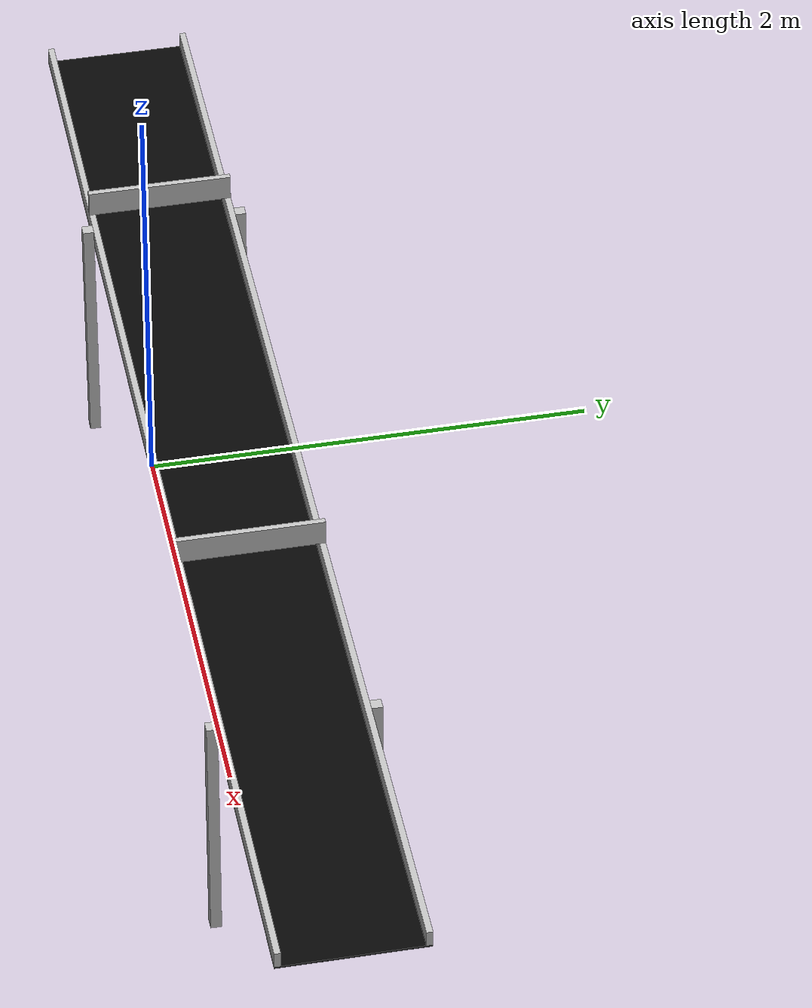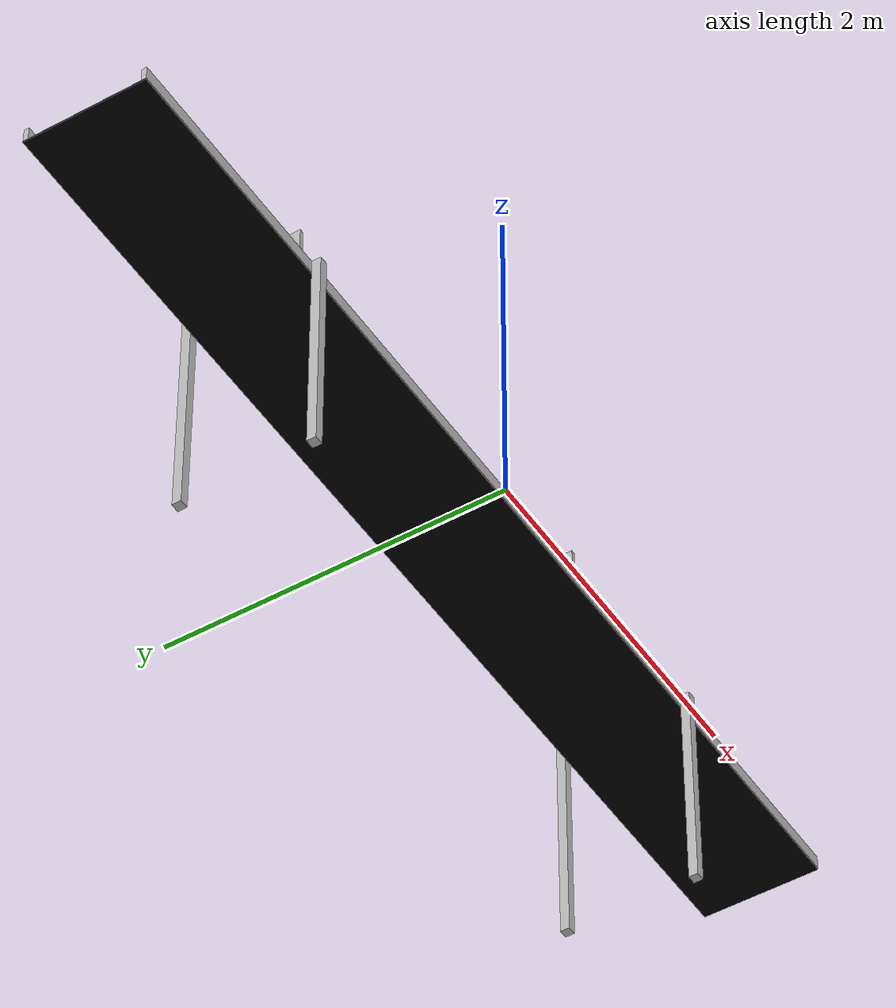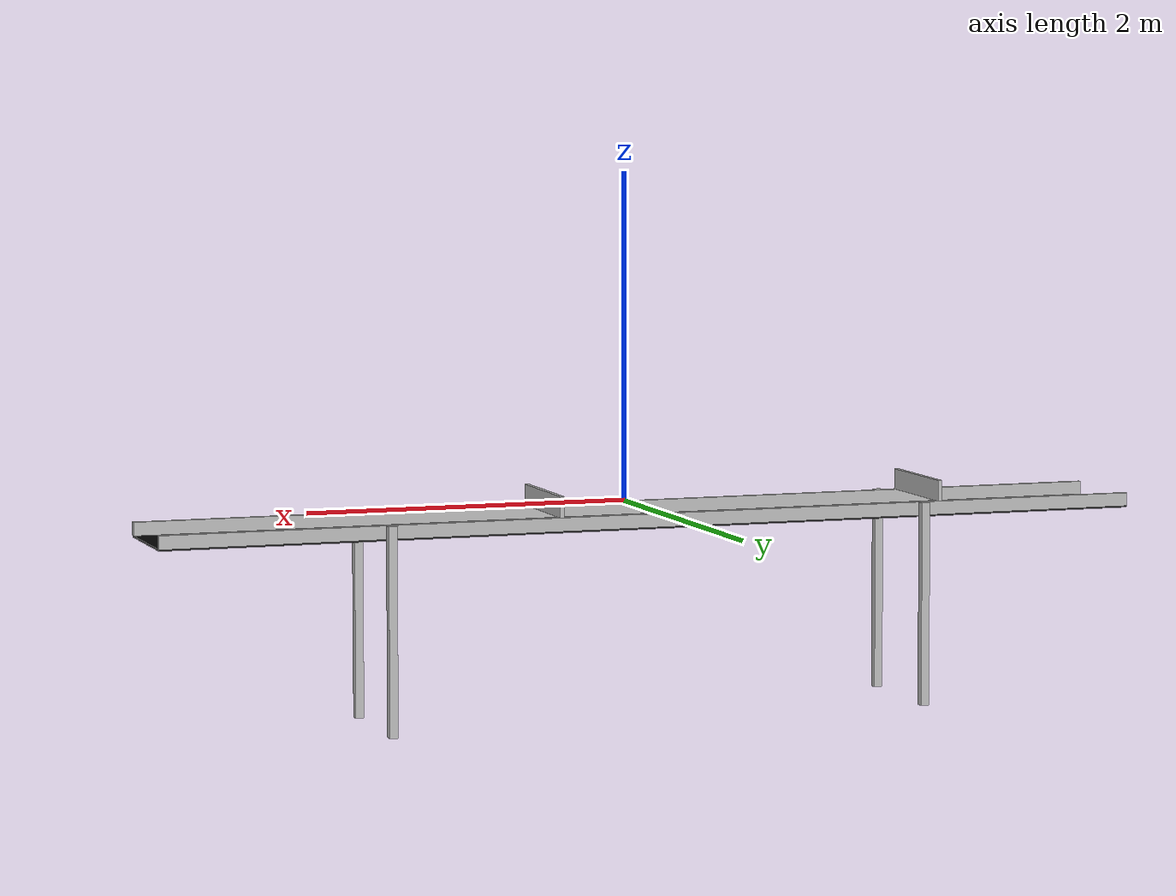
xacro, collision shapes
<?xml version="1.0"?>
<!-- created with Phobos 1.0.1 "Capricious Choutengan" -->
  <robot name="conveyor_g">

    <link name="link_belt">
      <inertial>
        <origin xyz="0 0 0" rpy="0 0 0"/>
        <mass value="10.0"/>
        <inertia ixx="0.38299" ixy="0" ixz="0" iyy="31.09613" iyz="0" izz="31.47895"/>
      </inertial>
      <visual name="visual_belt">
        <origin xyz="0 0 0" rpy="0 0 0"/>
        <geometry>
          <mesh filename="package://ur3e_irl_project/meshes/belt.dae" scale="1.0 1.0 1.0"/>
        </geometry>
        <material name="5,5,5"/>
      </visual>
      <collision name="collision_belt">
        <origin xyz="0 0 0" rpy="0 0 0"/>
        <geometry>
          <box size="6.10862 0.67785 0.01"/>
        </geometry>
      </collision>
    </link>

    <link name="link_bridge_left">
      <inertial>
        <origin xyz="0 0 0" rpy="0 0 0"/>
        <mass value="10.0"/>
        <inertia ixx="0.49874" ixy="0" ixz="0" iyy="0.01319" iyz="0" izz="0.48632"/>
      </inertial>
      <visual name="visual_bridge_left">
        <origin xyz="0 0 0" rpy="0 0 0"/>
        <geometry>
          <mesh filename="package://ur3e_irl_project/meshes/bridge_left.dae" scale="1.0 1.0 1.0"/>
        </geometry>
        <material name="191,191,191"/>
      </visual>
      <collision name="collision_bridge_left">
        <origin xyz="0 0 0.00635" rpy="0 0 0"/>
        <geometry>
          <box size="0.0254 0.67785 0.127"/>
        </geometry>
      </collision>
    </link>

    <link name="link_bridge_right">
      <inertial>
        <origin xyz="0 0 0" rpy="0 0 0"/>
        <mass value="10.0"/>
        <inertia ixx="0.49874" ixy="0" ixz="0" iyy="0.01319" iyz="0" izz="0.48632"/>
      </inertial>
      <visual name="visual_bridge_right">
        <origin xyz="0 0 0" rpy="0 0 0"/>
        <geometry>
          <mesh filename="package://ur3e_irl_project/meshes/brigde_right.dae" scale="1.0 1.0 1.0"/>
        </geometry>
        <material name="191,191,191"/>
      </visual>
      <collision name="collision_bridge_right">
        <origin xyz="0 0 0.00635" rpy="0 0 0"/>
        <geometry>
          <box size="0.0254 0.67785 0.127"/>
        </geometry>
      </collision>
    </link>

    <link name="link_flap_back">
      <inertial>
        <origin xyz="0 0 0" rpy="0 0 0"/>
        <mass value="10.0"/>
        <inertia ixx="0.00593" ixy="0" ixz="0" iyy="31.1013" iyz="0" izz="31.09673"/>
      </inertial>
      <visual name="visual_flap_back">
        <origin xyz="0 0 0" rpy="0 0 0"/>
        <geometry>
          <mesh filename="package://ur3e_irl_project/meshes/flap_back.dae" scale="1.0 1.0 1.0"/>
        </geometry>
        <material name="191,191,191"/>
      </visual>
      <collision name="collision_flap_back">
        <origin xyz="0 0 0" rpy="0 0 0"/>
        <geometry>
          <box size="6.10862 0.02857 0.07937"/>
        </geometry>
      </collision>
    </link>

    <link name="link_flap_front">
      <inertial>
        <origin xyz="0 0 0" rpy="0 0 0"/>
        <mass value="10.0"/>
        <inertia ixx="0.00593" ixy="0" ixz="0" iyy="31.1013" iyz="0" izz="31.09673"/>
      </inertial>
      <visual name="visual_flap_front">
        <origin xyz="0 0 0" rpy="0 0 0"/>
        <geometry>
          <mesh filename="package://ur3e_irl_project/meshes/flap_front.dae" scale="1.0 1.0 1.0"/>
        </geometry>
        <material name="191,191,191"/>
      </visual>
      <collision name="collision_flap_front">
        <origin xyz="0 0 0" rpy="0 0 0"/>
        <geometry>
          <box size="6.10862 0.02857 0.07937"/>
        </geometry>
      </collision>
    </link>

    <link name="link_leg_back_left">
      <inertial>
        <origin xyz="0 0 0" rpy="0 0 0"/>
        <mass value="10.0"/>
        <inertia ixx="1.29297" ixy="0" ixz="0" iyy="1.29297" iyz="0" izz="0.0043"/>
      </inertial>
      <visual name="visual_leg_back_left">
        <origin xyz="0 0 0" rpy="0 0 0"/>
        <geometry>
          <mesh filename="package://ur3e_irl_project/meshes/leg_back_left.dae" scale="1.0 1.0 1.0"/>
        </geometry>
        <material name="191,191,191"/>
      </visual>
      <collision name="collision_leg_back_left">
        <origin xyz="0 0 0" rpy="0 0 0"/>
        <geometry>
          <box size="0.0508 0.0508 1.24458"/>
        </geometry>
      </collision>
    </link>

    <link name="link_leg_back_right">
      <inertial>
        <origin xyz="0 0 0" rpy="0 0 0"/>
        <mass value="10.0"/>
        <inertia ixx="1.29297" ixy="0" ixz="0" iyy="1.29297" iyz="0" izz="0.0043"/>
      </inertial>
      <visual name="visual_leg_back_right">
        <origin xyz="0 0 0" rpy="0 0 0"/>
        <geometry>
          <mesh filename="package://ur3e_irl_project/meshes/leg_back_right.dae" scale="1.0 1.0 1.0"/>
        </geometry>
        <material name="191,191,191"/>
      </visual>
      <collision name="collision_leg_back_right">
        <origin xyz="0 0 0" rpy="0 0 0"/>
        <geometry>
          <box size="0.0508 0.0508 1.24458"/>
        </geometry>
      </collision>
    </link>

    <link name="link_leg_front_left">
      <inertial>
        <origin xyz="0 0 0" rpy="0 0 0"/>
        <mass value="10.0"/>
        <inertia ixx="1.29297" ixy="0" ixz="0" iyy="1.29297" iyz="0" izz="0.0043"/>
      </inertial>
      <visual name="visual_leg_front_left">
        <origin xyz="0 0 0" rpy="0 0 0"/>
        <geometry>
          <mesh filename="package://ur3e_irl_project/meshes/leg_front_left.dae" scale="1.0 1.0 1.0"/>
        </geometry>
        <material name="191,191,191"/>
      </visual>
      <collision name="collision_leg_front_left">
        <origin xyz="0 0 0" rpy="0 0 0"/>
        <geometry>
          <box size="0.0508 0.0508 1.24458"/>
        </geometry>
      </collision>
    </link>

    <link name="link_leg_front_right">
      <inertial>
        <origin xyz="0 0 0" rpy="0 0 0"/>
        <mass value="10.0"/>
        <inertia ixx="1.29297" ixy="0" ixz="0" iyy="1.29297" iyz="0" izz="0.0043"/>
      </inertial>
      <visual name="visual_leg_front_right">
        <origin xyz="0 0 0" rpy="0 0 0"/>
        <geometry>
          <mesh filename="package://ur3e_irl_project/meshes/leg_front_right.dae" scale="1.0 1.0 1.0"/>
        </geometry>
        <material name="191,191,191"/>
      </visual>
      <collision name="collision_leg_front_right">
        <origin xyz="0 0 0" rpy="0 0 0"/>
        <geometry>
          <box size="0.0508 0.0508 1.24458"/>
        </geometry>
      </collision>
    </link>

    <link name="conveyor_base">
      <inertial>
        <origin xyz="0 0 0" rpy="0 0 0"/>
        <mass value="0.001"/>
        <inertia ixx="0.001" ixy="0" ixz="0" iyy="0.001" iyz="0" izz="0.001"/>
      </inertial>
    </link>

    <joint name="joint_belt" type="fixed">
      <origin xyz="0 0.33893 -0.08438" rpy="0 0 0"/>
      <parent link="conveyor_base"/>
      <child link="link_belt"/>
    </joint>

    <joint name="joint_bridge_left" type="fixed">
      <origin xyz="0.62864 0.33893 0.05714" rpy="0 0 0"/>
      <parent link="conveyor_base"/>
      <child link="link_bridge_left"/>
    </joint>

    <joint name="joint_bridge_right" type="fixed">
      <origin xyz="-1.79703 0.33893 0.05714" rpy="0 0 0"/>
      <parent link="conveyor_base"/>
      <child link="link_bridge_right"/>
    </joint>

    <joint name="joint_flap_back" type="fixed">
      <origin xyz="0 0.01429 -0.03969" rpy="0 0 0"/>
      <parent link="conveyor_base"/>
      <child link="link_flap_back"/>
    </joint>

    <joint name="joint_flap_front" type="fixed">
      <origin xyz="0 0.66357 -0.03969" rpy="0 0 0"/>
      <parent link="conveyor_base"/>
      <child link="link_flap_front"/>
    </joint>

    <joint name="joint_leg_back_left" type="fixed">
      <origin xyz="1.68273 -0.0254 -0.6223" rpy="0 0 0"/>
      <parent link="conveyor_base"/>
      <child link="link_leg_back_left"/>
    </joint>

    <joint name="joint_leg_back_right" type="fixed">
      <origin xyz="-1.68273 -0.0254 -0.6223" rpy="0 0 0"/>
      <parent link="conveyor_base"/>
      <child link="link_leg_back_right"/>
    </joint>

    <joint name="joint_leg_front_left" type="fixed">
      <origin xyz="1.68273 0.70325 -0.6223" rpy="0 0 0"/>
      <parent link="conveyor_base"/>
      <child link="link_leg_front_left"/>
    </joint>

    <joint name="joint_leg_front_right" type="fixed">
      <origin xyz="-1.68273 0.70325 -0.6223" rpy="0 0 0"/>
      <parent link="conveyor_base"/>
      <child link="link_leg_front_right"/>
    </joint>

    <material name="191,191,191">
      <color rgba="0.74902 0.74902 0.74902 1.0"/>
    </material>

    <material name="5,5,5">
      <color rgba="0.01961 0.01961 0.01961 1.0"/>
    </material>

  </robot>
